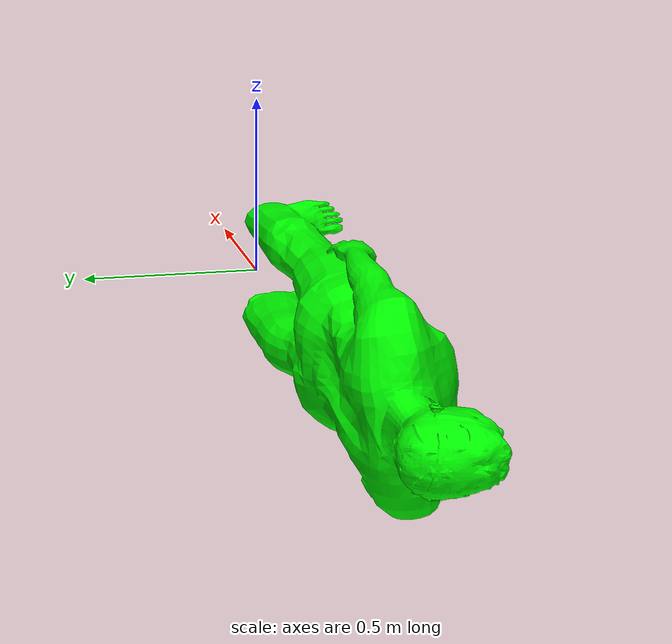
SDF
<?xml version="1.0" ?>
<sdf version="1.5">
  <model name="person_standing">
    <link name="link">
      <inertial>
        <pose>0 0 0.95 0 0 0</pose>
        <mass>80.0</mass>
        <inertia>
          <ixx>24.88</ixx>
          <ixy>0</ixy>
          <ixz>0</ixz>
          <iyy>25.73</iyy>
          <iyz>0</iyz>
          <izz>2.48</izz>
        </inertia>
      </inertial>

      <gravity>false</gravity>
      <kinematic>true</kinematic>

      <collision name="bottom">
        <pose>0 0 0.01 0 0 1.57</pose>
        <geometry>
          <box>
            <size>0.5 0.35 0.02</size>
          </box>
        </geometry>
      </collision>

      <collision name="person">
        <pose>0 0 0.02 0.04 0 1.57</pose>
        <geometry>
          <mesh>
            <uri>model://person_standing/meshes/standing.obj</uri>
          </mesh>
        </geometry>
      </collision>

      <visual name="visual">
        <pose>0 0 0.02 0.04 0 1.57</pose>
        <geometry>
          <mesh>
            <uri>model://person_standing/meshes/standing.dae</uri>
          </mesh>
        </geometry>
  	<material>
    	  <ambient>0 1 0 1</ambient>   <!-- 淡蓝色 -->
    	  <diffuse>0 1 0 1</diffuse>
    	  <specular>0.1 0.1 0.1 1</specular>
  	</material>
      </visual>
    </link>

    <plugin name="planar_move" filename="libgazebo_ros_planar_move.so">
      <bodyName>person_standing::link</bodyName>
      <topicName>/human/cmd_vel</topicName>
      <updateRate>100.0</updateRate>
    </plugin>

  </model>
</sdf>
